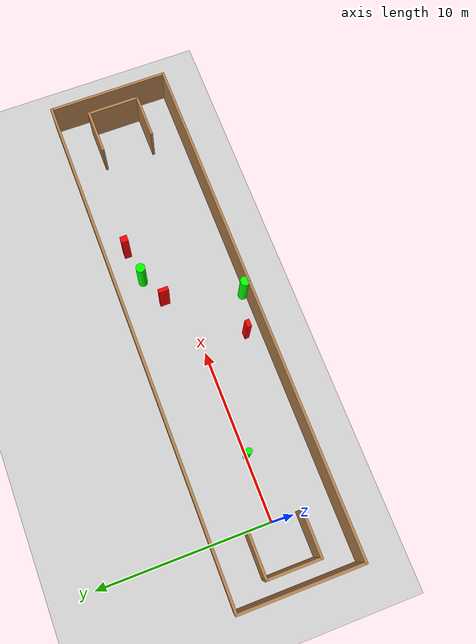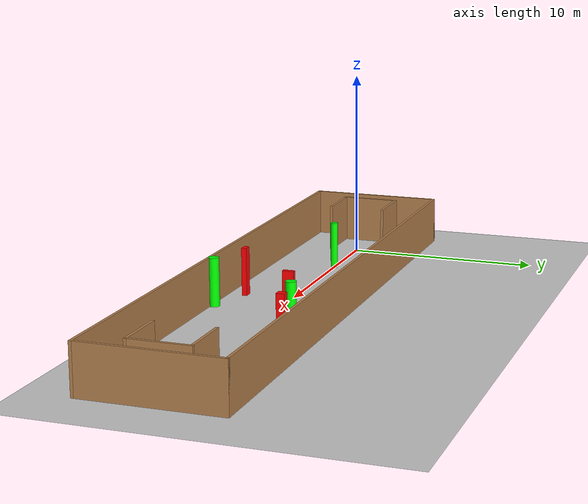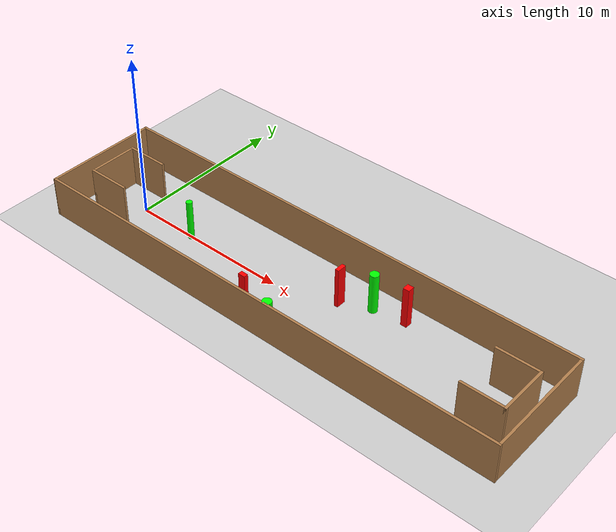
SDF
<sdf version="1.7">
 <world name="default">
  <light name="sun" type="directional">
   <pose>0 0 10 0 -0 0</pose>
   <diffuse>0.8 0.8 0.8 1</diffuse>
   <specular>0.2 0.2 0.2 1</specular>
   <attenuation>
    <range>1000</range>
    <constant>0.9</constant>
    <linear>0.01</linear>
    <quadratic>0.001</quadratic>
   </attenuation>
   <direction>-0.5 0.1 -0.9</direction>
   <spot><inner_angle>0</inner_angle><outer_angle>0</outer_angle><falloff>0</falloff></spot>
  </light>
  <model name="ground_plane">
   <static>1</static>
   <link name="link">
    <collision name="collision">
     <geometry><plane><normal>0 0 1</normal><size>100 100</size></plane></geometry>
     <surface>
      <contact><collide_bitmask>65535</collide_bitmask></contact>
      <friction><ode><mu>100</mu><mu2>50</mu2></ode></friction>
     </surface>
    </collision>
    <visual name="visual">
     <cast_shadows>0</cast_shadows>
     <geometry><plane><normal>0 0 1</normal><size>100 100</size></plane></geometry>
     <material>
      <script><uri>file://media/materials/scripts/gazebo.material</uri><name>Gazebo/Grey</name></script>
     </material>
    </visual>
   </link>
  </model>
  <gravity>0 0 -9.8</gravity>
  <magnetic_field>6e-06 2.3e-05 -4.2e-05</magnetic_field>
  <atmosphere type="adiabatic"/>
  <physics type="ode">
   <max_step_size>0.001</max_step_size>
   <real_time_factor>1</real_time_factor>
   <real_time_update_rate>1000</real_time_update_rate>
  </physics>
  <scene><ambient>0.4 0.4 0.4 1</ambient><background>0.7 0.7 0.7 1</background><shadows>1</shadows></scene>
  <spherical_coordinates>
   <surface_model>EARTH_WGS84</surface_model>
   <latitude_deg>0</latitude_deg>
   <longitude_deg>0</longitude_deg>
   <elevation>0</elevation>
   <heading_deg>0</heading_deg>
  </spherical_coordinates>
  <model name="my_base_walls">
   <link name="Wall_0">
    <collision name="Wall_0_Collision">
     <geometry><box><size>7.15 0.15 2.5</size></box></geometry>
     <pose>0 0 1.25 0 -0 0</pose>
    </collision>
    <visual name="Wall_0_Visual">
     <pose>0 0 1.25 0 -0 0</pose>
     <geometry><box><size>7.15 0.15 2.5</size></box></geometry>
     <material>
      <script><uri>file://media/materials/scripts/gazebo.material</uri><name>Gazebo/Wood</name></script>
      <ambient>1 1 1 1</ambient>
     </material>
     <meta><layer>0</layer></meta>
    </visual>
    <pose>-15 0 0 0 -0 1.5708</pose>
   </link>
   <link name="Wall_10">
    <collision name="Wall_10_Collision">
     <geometry><box><size>2.65 0.15 2.5</size></box></geometry>
     <pose>0 0 1.25 0 -0 0</pose>
    </collision>
    <visual name="Wall_10_Visual">
     <pose>0 0 1.25 0 -0 0</pose>
     <geometry><box><size>2.65 0.15 2.5</size></box></geometry>
     <material>
      <script><uri>file://media/materials/scripts/gazebo.material</uri><name>Gazebo/Wood</name></script>
      <ambient>1 1 1 1</ambient>
     </material>
     <meta><layer>0</layer></meta>
    </visual>
    <pose>-12.75 -1.5 0 0 -0 0</pose>
   </link>
   <link name="Wall_12">
    <collision name="Wall_12_Collision">
     <geometry><box><size>2.65 0.15 2.5</size></box></geometry>
     <pose>0 0 1.25 0 -0 0</pose>
    </collision>
    <visual name="Wall_12_Visual">
     <pose>0 0 1.25 0 -0 0</pose>
     <geometry><box><size>2.65 0.15 2.5</size></box></geometry>
     <material>
      <script><uri>file://media/materials/scripts/gazebo.material</uri><name>Gazebo/Wood</name></script>
      <ambient>1 1 1 1</ambient>
     </material>
     <meta><layer>0</layer></meta>
    </visual>
    <pose>-12.75 1.5 0 0 -0 0</pose>
   </link>
   <link name="Wall_14">
    <collision name="Wall_14_Collision">
     <geometry><box><size>3.15 0.15 2.5</size></box></geometry>
     <pose>0 0 1.25 0 -0 0</pose>
    </collision>
    <visual name="Wall_14_Visual">
     <pose>0 0 1.25 0 -0 0</pose>
     <geometry><box><size>3.15 0.15 2.5</size></box></geometry>
     <material>
      <script><uri>file://media/materials/scripts/gazebo.material</uri><name>Gazebo/Wood</name></script>
      <ambient>1 1 1 1</ambient>
     </material>
     <meta><layer>0</layer></meta>
    </visual>
    <pose>14 0 0 0 -0 -1.5708</pose>
   </link>
   <link name="Wall_15">
    <collision name="Wall_15_Collision">
     <geometry><box><size>2.65 0.15 2.5</size></box></geometry>
     <pose>0 0 1.25 0 -0 0</pose>
    </collision>
    <visual name="Wall_15_Visual">
     <pose>0 0 1.25 0 -0 0</pose>
     <geometry><box><size>2.65 0.15 2.5</size></box></geometry>
     <material>
      <script><uri>file://media/materials/scripts/gazebo.material</uri><name>Gazebo/Wood</name></script>
      <ambient>1 1 1 1</ambient>
     </material>
     <meta><layer>0</layer></meta>
    </visual>
    <pose>12.75 -1.5 0 0 -0 3.14159</pose>
   </link>
   <link name="Wall_17">
    <collision name="Wall_17_Collision">
     <geometry><box><size>2.65 0.15 2.5</size></box></geometry>
     <pose>0 0 1.25 0 -0 0</pose>
    </collision>
    <visual name="Wall_17_Visual">
     <pose>0 0 1.25 0 -0 0</pose>
     <geometry><box><size>2.65 0.15 2.5</size></box></geometry>
     <material>
      <script><uri>file://media/materials/scripts/gazebo.material</uri><name>Gazebo/Wood</name></script>
      <ambient>1 1 1 1</ambient>
     </material>
     <meta><layer>0</layer></meta>
    </visual>
    <pose>12.75 1.5 0 0 -0 3.14159</pose>
   </link>
   <link name="Wall_2">
    <collision name="Wall_2_Collision">
     <geometry><box><size>30.15 0.15 2.5</size></box></geometry>
     <pose>0 0 1.25 0 -0 0</pose>
    </collision>
    <visual name="Wall_2_Visual">
     <pose>0 0 1.25 0 -0 0</pose>
     <geometry><box><size>30.15 0.15 2.5</size></box></geometry>
     <material>
      <script><uri>file://media/materials/scripts/gazebo.material</uri><name>Gazebo/Wood</name></script>
      <ambient>1 1 1 1</ambient>
     </material>
     <meta><layer>0</layer></meta>
    </visual>
    <pose>-0 -3.5 0 0 -0 0</pose>
   </link>
   <link name="Wall_4">
    <collision name="Wall_4_Collision">
     <geometry><box><size>30.15 0.15 2.5</size></box></geometry>
     <pose>0 0 1.25 0 -0 0</pose>
    </collision>
    <visual name="Wall_4_Visual">
     <pose>0 0 1.25 0 -0 0</pose>
     <geometry><box><size>30.15 0.15 2.5</size></box></geometry>
     <material>
      <script><uri>file://media/materials/scripts/gazebo.material</uri><name>Gazebo/Wood</name></script>
      <ambient>1 1 1 1</ambient>
     </material>
     <meta><layer>0</layer></meta>
    </visual>
    <pose>-0 3.5 0 0 -0 0</pose>
   </link>
   <link name="Wall_6">
    <collision name="Wall_6_Collision">
     <geometry><box><size>7.15 0.15 2.5</size></box></geometry>
     <pose>0 0 1.25 0 -0 0</pose>
    </collision>
    <visual name="Wall_6_Visual">
     <pose>0 0 1.25 0 -0 0</pose>
     <geometry><box><size>7.15 0.15 2.5</size></box></geometry>
     <material>
      <script><uri>file://media/materials/scripts/gazebo.material</uri><name>Gazebo/Wood</name></script>
      <ambient>1 1 1 1</ambient>
     </material>
     <meta><layer>0</layer></meta>
    </visual>
    <pose>15 0 0 0 -0 -1.5708</pose>
   </link>
   <link name="Wall_9">
    <collision name="Wall_9_Collision">
     <geometry><box><size>3.15 0.15 2.5</size></box></geometry>
     <pose>0 0 1.25 0 -0 0</pose>
    </collision>
    <visual name="Wall_9_Visual">
     <pose>0 0 1.25 0 -0 0</pose>
     <geometry><box><size>3.15 0.15 2.5</size></box></geometry>
     <material>
      <script><uri>file://media/materials/scripts/gazebo.material</uri><name>Gazebo/Wood</name></script>
      <ambient>1 1 1 1</ambient>
     </material>
     <meta><layer>0</layer></meta>
    </visual>
    <pose>-14 0 0 0 -0 -1.5708</pose>
   </link>
   <static>1</static>
   <pose>11.5 0 0 0 -0 0</pose>
  </model>
  <model name="cylinder1">
   <static>1</static>
   <link name="link">
    <inertial>
     <mass>1</mass>
     <inertia><ixx>0.5</ixx><ixy>0</ixy><ixz>0</ixz><iyy>0.5</iyy><iyz>0</iyz><izz>1</izz></inertia>
    </inertial>
    <collision name="collision">
     <geometry><cylinder><radius>0.26602089394630324</radius><length>2.5</length></cylinder></geometry>
    </collision>
    <visual name="visual">
     <geometry><cylinder><radius>0.26602089394630324</radius><length>2.5</length></cylinder></geometry>
     <material>
      <ambient>0 1 0 1</ambient>
      <diffuse>0 1 0 1</diffuse>
      <specular>0.1 0.1 0.1 1</specular>
      <emissive>0 0 0 0</emissive>
     </material>
    </visual>
   </link>
   <pose>15.298152629084088 1.8924030950003647 1.25 0 0 0</pose>
  </model>
  <model name="cylinder2">
   <static>1</static>
   <link name="link">
    <inertial>
     <mass>1</mass>
     <inertia><ixx>0.5</ixx><ixy>0</ixy><ixz>0</ixz><iyy>0.5</iyy><iyz>0</iyz><izz>1</izz></inertia>
    </inertial>
    <collision name="collision">
     <geometry><cylinder><radius>0.2770332075911951</radius><length>2.5</length></cylinder></geometry>
    </collision>
    <visual name="visual">
     <geometry><cylinder><radius>0.2770332075911951</radius><length>2.5</length></cylinder></geometry>
     <material>
      <ambient>0 1 0 1</ambient>
      <diffuse>0 1 0 1</diffuse>
      <specular>0.1 0.1 0.1 1</specular>
      <emissive>0 0 0 0</emissive>
     </material>
    </visual>
   </link>
   <pose>12.532500193739141 -3.2801639613735016 1.25 0 0 0</pose>
  </model>
  <model name="cylinder3">
   <static>1</static>
   <link name="link">
    <inertial>
     <mass>1</mass>
     <inertia><ixx>0.5</ixx><ixy>0</ixy><ixz>0</ixz><iyy>0.5</iyy><iyz>0</iyz><izz>1</izz></inertia>
    </inertial>
    <collision name="collision">
     <geometry><cylinder><radius>0.18545032892460145</radius><length>2.5</length></cylinder></geometry>
    </collision>
    <visual name="visual">
     <geometry><cylinder><radius>0.18545032892460145</radius><length>2.5</length></cylinder></geometry>
     <material>
      <ambient>0 1 0 1</ambient>
      <diffuse>0 1 0 1</diffuse>
      <specular>0.1 0.1 0.1 1</specular>
      <emissive>0 0 0 0</emissive>
     </material>
    </visual>
   </link>
   <pose>3.7615712087834137 -0.03253295389923583 1.25 0 0 0</pose>
  </model>
  <model name="box1">
   <static>1</static>
   <link name="link">
    <inertial>
     <mass>1</mass>
     <inertia><ixx>0.083</ixx><ixy>0</ixy><ixz>0</ixz><iyy>0.083</iyy><iyz>0</iyz><izz>0.083</izz></inertia>
    </inertial>
    <collision name="collision">
     <geometry><box><size>0.3786894269522718 0.4183724203661795 2.5</size></box></geometry>
    </collision>
    <visual name="visual">
     <geometry><box><size>0.3786894269522718 0.4183724203661795 2.5</size></box></geometry>
     <material>
      <ambient>1 0 0 1</ambient>
      <diffuse>1 0 0 1</diffuse>
      <specular>0.1 0.1 0.1 1</specular>
      <emissive>0 0 0 0</emissive>
     </material>
    </visual>
    <sensor name="my_contact" type="contact">
     <contact><collision>box_collision</collision><topic>__default_topic__</topic></contact>
    </sensor>
   </link>
   <pose>17.24322338687567 2.1807217021585608 1.25 0 0 0</pose>
  </model>
  <model name="box2">
   <static>1</static>
   <link name="link">
    <inertial>
     <mass>1</mass>
     <inertia><ixx>0.083</ixx><ixy>0</ixy><ixz>0</ixz><iyy>0.083</iyy><iyz>0</iyz><izz>0.083</izz></inertia>
    </inertial>
    <collision name="collision">
     <geometry><box><size>0.2355713390876747 0.5834248084392302 2.5</size></box></geometry>
    </collision>
    <visual name="visual">
     <geometry><box><size>0.2355713390876747 0.5834248084392302 2.5</size></box></geometry>
     <material>
      <ambient>1 0 0 1</ambient>
      <diffuse>1 0 0 1</diffuse>
      <specular>0.1 0.1 0.1 1</specular>
      <emissive>0 0 0 0</emissive>
     </material>
    </visual>
    <sensor name="my_contact" type="contact">
     <contact><collision>box_collision</collision><topic>__default_topic__</topic></contact>
    </sensor>
   </link>
   <pose>13.64784860688786 1.1342801322235498 1.25 0 0 0</pose>
  </model>
  <model name="box3">
   <static>1</static>
   <link name="link">
    <inertial>
     <mass>1</mass>
     <inertia><ixx>0.083</ixx><ixy>0</ixy><ixz>0</ixz><iyy>0.083</iyy><iyz>0</iyz><izz>0.083</izz></inertia>
    </inertial>
    <collision name="collision">
     <geometry><box><size>0.428622479734456 0.2617628579604185 2.5</size></box></geometry>
    </collision>
    <visual name="visual">
     <geometry><box><size>0.428622479734456 0.2617628579604185 2.5</size></box></geometry>
     <material>
      <ambient>1 0 0 1</ambient>
      <diffuse>1 0 0 1</diffuse>
      <specular>0.1 0.1 0.1 1</specular>
      <emissive>0 0 0 0</emissive>
     </material>
    </visual>
    <sensor name="my_contact" type="contact">
     <contact><collision>box_collision</collision><topic>__default_topic__</topic></contact>
    </sensor>
   </link>
   <pose>10.21196381509518 -2.550031749202279 1.25 0 0 0</pose>
  </model>
 </world>
</sdf>
